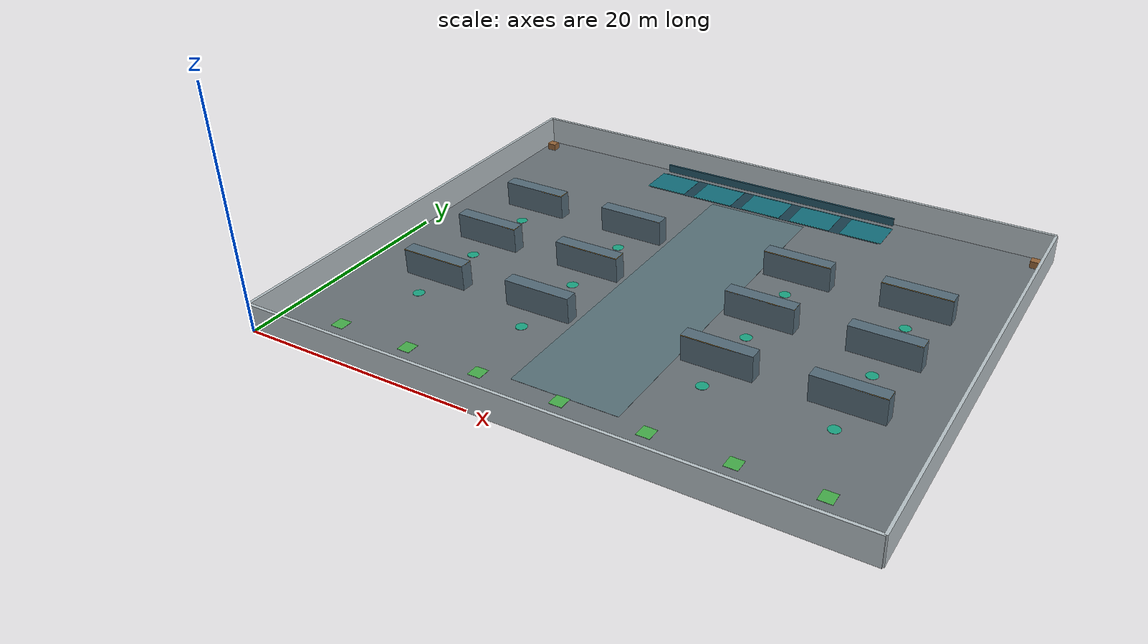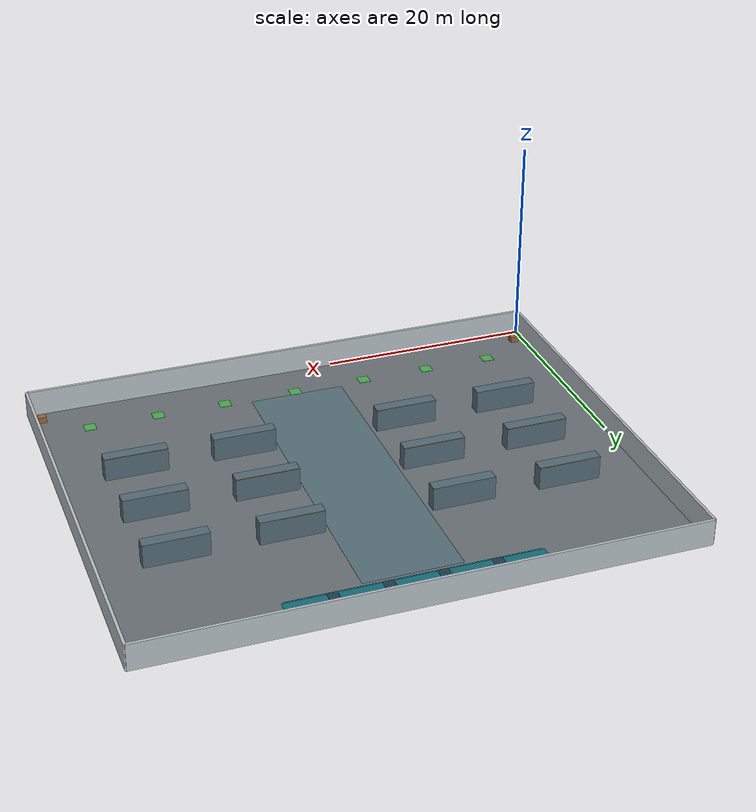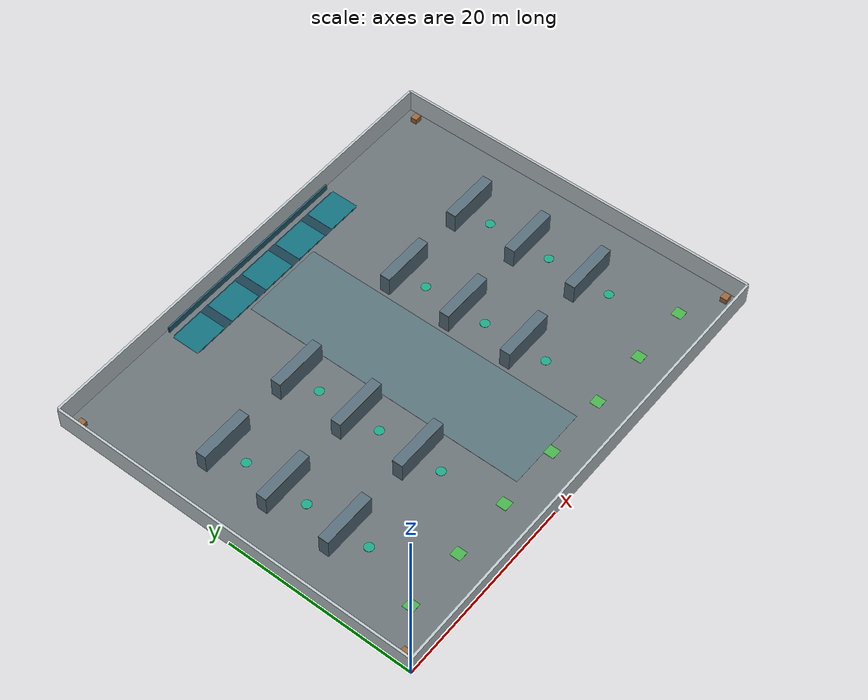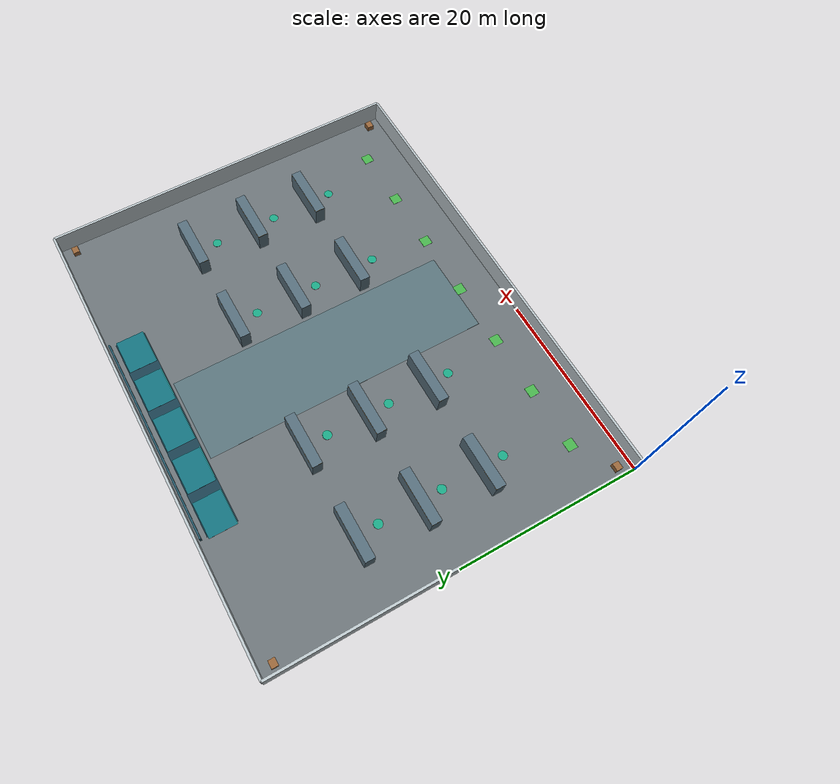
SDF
<?xml version="1.0" ?>
<!-- |    This document was autogenerated by xacro from src/amr_simulation/worlds/warehouse_sih_v2_large.sdf.xacro | -->
<!-- |    EDITING THIS FILE BY HAND IS NOT RECOMMENDED                                 | -->
<sdf version="1.9">
  <world name="warehouse_sih_v2_large">
    <physics name="stable" type="ode">
      <max_step_size>0.002</max_step_size>
      <real_time_factor>1.0</real_time_factor>
      <real_time_update_rate>500</real_time_update_rate>
    </physics>
    <plugin filename="gz-sim-physics-system" name="gz::sim::systems::Physics"/>
    <plugin filename="gz-sim-user-commands-system" name="gz::sim::systems::UserCommands"/>
    <plugin filename="gz-sim-scene-broadcaster-system" name="gz::sim::systems::SceneBroadcaster"/>
    <plugin filename="gz-sim-sensors-system" name="gz::sim::systems::Sensors">
      <render_engine>ogre2</render_engine>
    </plugin>
    <plugin filename="gz-sim-imu-system" name="gz::sim::systems::Imu"/>
    <scene>
      <ambient>0.56 0.59 0.62 1</ambient>
      <background>0.12 0.15 0.18 1</background>
      <shadows>true</shadows>
    </scene>
    <light name="sun" type="directional">
      <pose>25 20 18 0 0 0</pose>
      <diffuse>0.92 0.93 0.91 1</diffuse>
      <specular>0.20 0.20 0.20 1</specular>
      <direction>-0.35 0.25 -0.9</direction>
      <cast_shadows>true</cast_shadows>
    </light>
    <model name="warehouse_floor">
      <static>true</static>
      <pose>25 20 -0.05 0 0 0</pose>
      <link name="floor">
        <collision name="collision">
          <geometry>
            <box>
              <size>50 40 0.10</size>
            </box>
          </geometry>
        </collision>
        <visual name="visual">
          <geometry>
            <box>
              <size>50 40 0.10</size>
            </box>
          </geometry>
          <material>
            <ambient>0.33 0.36 0.38 1</ambient>
            <diffuse>0.41 0.44 0.46 1</diffuse>
          </material>
        </visual>
      </link>
    </model>
    <model name="wall_north">
      <static>true</static>
      <pose>25 40 1.25 0 0 0</pose>
      <link name="wall">
        <collision name="collision">
          <geometry>
            <box>
              <size>50 0.25 2.5</size>
            </box>
          </geometry>
        </collision>
        <visual name="visual">
          <geometry>
            <box>
              <size>50 0.25 2.5</size>
            </box>
          </geometry>
          <material>
            <ambient>0.64 0.69 0.72 1</ambient>
            <diffuse>0.72 0.76 0.78 1</diffuse>
          </material>
        </visual>
      </link>
    </model>
    <model name="wall_south">
      <static>true</static>
      <pose>25 0 1.25 0 0 0</pose>
      <link name="wall">
        <collision name="collision">
          <geometry>
            <box>
              <size>50 0.25 2.5</size>
            </box>
          </geometry>
        </collision>
        <visual name="visual">
          <geometry>
            <box>
              <size>50 0.25 2.5</size>
            </box>
          </geometry>
          <material>
            <ambient>0.64 0.69 0.72 1</ambient>
            <diffuse>0.72 0.76 0.78 1</diffuse>
          </material>
        </visual>
      </link>
    </model>
    <model name="wall_west">
      <static>true</static>
      <pose>0 20 1.25 0 0 0</pose>
      <link name="wall">
        <collision name="collision">
          <geometry>
            <box>
              <size>0.25 40 2.5</size>
            </box>
          </geometry>
        </collision>
        <visual name="visual">
          <geometry>
            <box>
              <size>0.25 40 2.5</size>
            </box>
          </geometry>
          <material>
            <ambient>0.64 0.69 0.72 1</ambient>
            <diffuse>0.72 0.76 0.78 1</diffuse>
          </material>
        </visual>
      </link>
    </model>
    <model name="wall_east">
      <static>true</static>
      <pose>50 20 1.25 0 0 0</pose>
      <link name="wall">
        <collision name="collision">
          <geometry>
            <box>
              <size>0.25 40 2.5</size>
            </box>
          </geometry>
        </collision>
        <visual name="visual">
          <geometry>
            <box>
              <size>0.25 40 2.5</size>
            </box>
          </geometry>
          <material>
            <ambient>0.64 0.69 0.72 1</ambient>
            <diffuse>0.72 0.76 0.78 1</diffuse>
          </material>
        </visual>
      </link>
    </model>
    <!-- Floor paint has no collision. It leaves the central route dominant. -->
    <model name="MAIN_PATH">
      <static>true</static>
      <pose>25 20 0.006 0 0 0</pose>
      <link name="paint">
        <visual name="visual">
          <geometry>
            <box>
              <size>9.0 31.0 0.012</size>
            </box>
          </geometry>
          <material>
            <ambient>0.30 0.38 0.41 1</ambient>
            <diffuse>0.34 0.44 0.47 1</diffuse>
          </material>
        </visual>
      </link>
    </model>
    <model name="SHELF_01">
      <static>true</static>
      <pose>7.225 27.0 1.10 0 0 0</pose>
      <link name="rack">
        <collision name="collision">
          <geometry>
            <box>
              <size>5.8 1.1 2.2</size>
            </box>
          </geometry>
        </collision>
        <visual name="frame">
          <geometry>
            <box>
              <size>5.8 1.1 2.2</size>
            </box>
          </geometry>
          <material>
            <ambient>0.24 0.31 0.35 1</ambient>
            <diffuse>0.33 0.42 0.47 1</diffuse>
          </material>
        </visual>
        <visual name="top_rail">
          <pose>0 0 1.07 0 0 0</pose>
          <geometry>
            <box>
              <size>5.8 1.1 0.06</size>
            </box>
          </geometry>
          <material>
            <ambient>0.72 0.48 0.12 1</ambient>
            <diffuse>0.78 0.54 0.14 1</diffuse>
          </material>
        </visual>
      </link>
    </model>
    <model name="SHELF_02">
      <static>true</static>
      <pose>17.225 27.0 1.10 0 0 0</pose>
      <link name="rack">
        <collision name="collision">
          <geometry>
            <box>
              <size>5.8 1.1 2.2</size>
            </box>
          </geometry>
        </collision>
        <visual name="frame">
          <geometry>
            <box>
              <size>5.8 1.1 2.2</size>
            </box>
          </geometry>
          <material>
            <ambient>0.24 0.31 0.35 1</ambient>
            <diffuse>0.33 0.42 0.47 1</diffuse>
          </material>
        </visual>
        <visual name="top_rail">
          <pose>0 0 1.07 0 0 0</pose>
          <geometry>
            <box>
              <size>5.8 1.1 0.06</size>
            </box>
          </geometry>
          <material>
            <ambient>0.72 0.48 0.12 1</ambient>
            <diffuse>0.78 0.54 0.14 1</diffuse>
          </material>
        </visual>
      </link>
    </model>
    <model name="SHELF_03">
      <static>true</static>
      <pose>32.775 27.0 1.10 0 0 0</pose>
      <link name="rack">
        <collision name="collision">
          <geometry>
            <box>
              <size>5.8 1.1 2.2</size>
            </box>
          </geometry>
        </collision>
        <visual name="frame">
          <geometry>
            <box>
              <size>5.8 1.1 2.2</size>
            </box>
          </geometry>
          <material>
            <ambient>0.24 0.31 0.35 1</ambient>
            <diffuse>0.33 0.42 0.47 1</diffuse>
          </material>
        </visual>
        <visual name="top_rail">
          <pose>0 0 1.07 0 0 0</pose>
          <geometry>
            <box>
              <size>5.8 1.1 0.06</size>
            </box>
          </geometry>
          <material>
            <ambient>0.72 0.48 0.12 1</ambient>
            <diffuse>0.78 0.54 0.14 1</diffuse>
          </material>
        </visual>
      </link>
    </model>
    <model name="SHELF_04">
      <static>true</static>
      <pose>42.775 27.0 1.10 0 0 0</pose>
      <link name="rack">
        <collision name="collision">
          <geometry>
            <box>
              <size>5.8 1.1 2.2</size>
            </box>
          </geometry>
        </collision>
        <visual name="frame">
          <geometry>
            <box>
              <size>5.8 1.1 2.2</size>
            </box>
          </geometry>
          <material>
            <ambient>0.24 0.31 0.35 1</ambient>
            <diffuse>0.33 0.42 0.47 1</diffuse>
          </material>
        </visual>
        <visual name="top_rail">
          <pose>0 0 1.07 0 0 0</pose>
          <geometry>
            <box>
              <size>5.8 1.1 0.06</size>
            </box>
          </geometry>
          <material>
            <ambient>0.72 0.48 0.12 1</ambient>
            <diffuse>0.78 0.54 0.14 1</diffuse>
          </material>
        </visual>
      </link>
    </model>
    <model name="SHELF_05">
      <static>true</static>
      <pose>7.225 20.0 1.10 0 0 0</pose>
      <link name="rack">
        <collision name="collision">
          <geometry>
            <box>
              <size>5.8 1.1 2.2</size>
            </box>
          </geometry>
        </collision>
        <visual name="frame">
          <geometry>
            <box>
              <size>5.8 1.1 2.2</size>
            </box>
          </geometry>
          <material>
            <ambient>0.24 0.31 0.35 1</ambient>
            <diffuse>0.33 0.42 0.47 1</diffuse>
          </material>
        </visual>
        <visual name="top_rail">
          <pose>0 0 1.07 0 0 0</pose>
          <geometry>
            <box>
              <size>5.8 1.1 0.06</size>
            </box>
          </geometry>
          <material>
            <ambient>0.72 0.48 0.12 1</ambient>
            <diffuse>0.78 0.54 0.14 1</diffuse>
          </material>
        </visual>
      </link>
    </model>
    <model name="SHELF_06">
      <static>true</static>
      <pose>17.225 20.0 1.10 0 0 0</pose>
      <link name="rack">
        <collision name="collision">
          <geometry>
            <box>
              <size>5.8 1.1 2.2</size>
            </box>
          </geometry>
        </collision>
        <visual name="frame">
          <geometry>
            <box>
              <size>5.8 1.1 2.2</size>
            </box>
          </geometry>
          <material>
            <ambient>0.24 0.31 0.35 1</ambient>
            <diffuse>0.33 0.42 0.47 1</diffuse>
          </material>
        </visual>
        <visual name="top_rail">
          <pose>0 0 1.07 0 0 0</pose>
          <geometry>
            <box>
              <size>5.8 1.1 0.06</size>
            </box>
          </geometry>
          <material>
            <ambient>0.72 0.48 0.12 1</ambient>
            <diffuse>0.78 0.54 0.14 1</diffuse>
          </material>
        </visual>
      </link>
    </model>
    <model name="SHELF_07">
      <static>true</static>
      <pose>32.775 20.0 1.10 0 0 0</pose>
      <link name="rack">
        <collision name="collision">
          <geometry>
            <box>
              <size>5.8 1.1 2.2</size>
            </box>
          </geometry>
        </collision>
        <visual name="frame">
          <geometry>
            <box>
              <size>5.8 1.1 2.2</size>
            </box>
          </geometry>
          <material>
            <ambient>0.24 0.31 0.35 1</ambient>
            <diffuse>0.33 0.42 0.47 1</diffuse>
          </material>
        </visual>
        <visual name="top_rail">
          <pose>0 0 1.07 0 0 0</pose>
          <geometry>
            <box>
              <size>5.8 1.1 0.06</size>
            </box>
          </geometry>
          <material>
            <ambient>0.72 0.48 0.12 1</ambient>
            <diffuse>0.78 0.54 0.14 1</diffuse>
          </material>
        </visual>
      </link>
    </model>
    <model name="SHELF_08">
      <static>true</static>
      <pose>42.775 20.0 1.10 0 0 0</pose>
      <link name="rack">
        <collision name="collision">
          <geometry>
            <box>
              <size>5.8 1.1 2.2</size>
            </box>
          </geometry>
        </collision>
        <visual name="frame">
          <geometry>
            <box>
              <size>5.8 1.1 2.2</size>
            </box>
          </geometry>
          <material>
            <ambient>0.24 0.31 0.35 1</ambient>
            <diffuse>0.33 0.42 0.47 1</diffuse>
          </material>
        </visual>
        <visual name="top_rail">
          <pose>0 0 1.07 0 0 0</pose>
          <geometry>
            <box>
              <size>5.8 1.1 0.06</size>
            </box>
          </geometry>
          <material>
            <ambient>0.72 0.48 0.12 1</ambient>
            <diffuse>0.78 0.54 0.14 1</diffuse>
          </material>
        </visual>
      </link>
    </model>
    <model name="SHELF_09">
      <static>true</static>
      <pose>7.225 13.0 1.10 0 0 0</pose>
      <link name="rack">
        <collision name="collision">
          <geometry>
            <box>
              <size>5.8 1.1 2.2</size>
            </box>
          </geometry>
        </collision>
        <visual name="frame">
          <geometry>
            <box>
              <size>5.8 1.1 2.2</size>
            </box>
          </geometry>
          <material>
            <ambient>0.24 0.31 0.35 1</ambient>
            <diffuse>0.33 0.42 0.47 1</diffuse>
          </material>
        </visual>
        <visual name="top_rail">
          <pose>0 0 1.07 0 0 0</pose>
          <geometry>
            <box>
              <size>5.8 1.1 0.06</size>
            </box>
          </geometry>
          <material>
            <ambient>0.72 0.48 0.12 1</ambient>
            <diffuse>0.78 0.54 0.14 1</diffuse>
          </material>
        </visual>
      </link>
    </model>
    <model name="SHELF_10">
      <static>true</static>
      <pose>17.225 13.0 1.10 0 0 0</pose>
      <link name="rack">
        <collision name="collision">
          <geometry>
            <box>
              <size>5.8 1.1 2.2</size>
            </box>
          </geometry>
        </collision>
        <visual name="frame">
          <geometry>
            <box>
              <size>5.8 1.1 2.2</size>
            </box>
          </geometry>
          <material>
            <ambient>0.24 0.31 0.35 1</ambient>
            <diffuse>0.33 0.42 0.47 1</diffuse>
          </material>
        </visual>
        <visual name="top_rail">
          <pose>0 0 1.07 0 0 0</pose>
          <geometry>
            <box>
              <size>5.8 1.1 0.06</size>
            </box>
          </geometry>
          <material>
            <ambient>0.72 0.48 0.12 1</ambient>
            <diffuse>0.78 0.54 0.14 1</diffuse>
          </material>
        </visual>
      </link>
    </model>
    <model name="SHELF_11">
      <static>true</static>
      <pose>32.775 13.0 1.10 0 0 0</pose>
      <link name="rack">
        <collision name="collision">
          <geometry>
            <box>
              <size>5.8 1.1 2.2</size>
            </box>
          </geometry>
        </collision>
        <visual name="frame">
          <geometry>
            <box>
              <size>5.8 1.1 2.2</size>
            </box>
          </geometry>
          <material>
            <ambient>0.24 0.31 0.35 1</ambient>
            <diffuse>0.33 0.42 0.47 1</diffuse>
          </material>
        </visual>
        <visual name="top_rail">
          <pose>0 0 1.07 0 0 0</pose>
          <geometry>
            <box>
              <size>5.8 1.1 0.06</size>
            </box>
          </geometry>
          <material>
            <ambient>0.72 0.48 0.12 1</ambient>
            <diffuse>0.78 0.54 0.14 1</diffuse>
          </material>
        </visual>
      </link>
    </model>
    <model name="SHELF_12">
      <static>true</static>
      <pose>42.775 13.0 1.10 0 0 0</pose>
      <link name="rack">
        <collision name="collision">
          <geometry>
            <box>
              <size>5.8 1.1 2.2</size>
            </box>
          </geometry>
        </collision>
        <visual name="frame">
          <geometry>
            <box>
              <size>5.8 1.1 2.2</size>
            </box>
          </geometry>
          <material>
            <ambient>0.24 0.31 0.35 1</ambient>
            <diffuse>0.33 0.42 0.47 1</diffuse>
          </material>
        </visual>
        <visual name="top_rail">
          <pose>0 0 1.07 0 0 0</pose>
          <geometry>
            <box>
              <size>5.8 1.1 0.06</size>
            </box>
          </geometry>
          <material>
            <ambient>0.72 0.48 0.12 1</ambient>
            <diffuse>0.78 0.54 0.14 1</diffuse>
          </material>
        </visual>
      </link>
    </model>
    <model name="PICKUP_01">
      <static>true</static>
      <pose>7.225 24.4 0.012 0 0 0</pose>
      <link name="floor_marker">
        <visual name="visual">
          <geometry>
            <cylinder>
              <radius>0.48</radius>
              <length>0.024</length>
            </cylinder>
          </geometry>
          <material>
            <ambient>0.08 0.51 0.42 1</ambient>
            <diffuse>0.10 0.64 0.51 1</diffuse>
          </material>
        </visual>
      </link>
    </model>
    <model name="PICKUP_02">
      <static>true</static>
      <pose>17.225 24.4 0.012 0 0 0</pose>
      <link name="floor_marker">
        <visual name="visual">
          <geometry>
            <cylinder>
              <radius>0.48</radius>
              <length>0.024</length>
            </cylinder>
          </geometry>
          <material>
            <ambient>0.08 0.51 0.42 1</ambient>
            <diffuse>0.10 0.64 0.51 1</diffuse>
          </material>
        </visual>
      </link>
    </model>
    <model name="PICKUP_03">
      <static>true</static>
      <pose>32.775 24.4 0.012 0 0 0</pose>
      <link name="floor_marker">
        <visual name="visual">
          <geometry>
            <cylinder>
              <radius>0.48</radius>
              <length>0.024</length>
            </cylinder>
          </geometry>
          <material>
            <ambient>0.08 0.51 0.42 1</ambient>
            <diffuse>0.10 0.64 0.51 1</diffuse>
          </material>
        </visual>
      </link>
    </model>
    <model name="PICKUP_04">
      <static>true</static>
      <pose>42.775 24.4 0.012 0 0 0</pose>
      <link name="floor_marker">
        <visual name="visual">
          <geometry>
            <cylinder>
              <radius>0.48</radius>
              <length>0.024</length>
            </cylinder>
          </geometry>
          <material>
            <ambient>0.08 0.51 0.42 1</ambient>
            <diffuse>0.10 0.64 0.51 1</diffuse>
          </material>
        </visual>
      </link>
    </model>
    <model name="PICKUP_05">
      <static>true</static>
      <pose>7.225 17.4 0.012 0 0 0</pose>
      <link name="floor_marker">
        <visual name="visual">
          <geometry>
            <cylinder>
              <radius>0.48</radius>
              <length>0.024</length>
            </cylinder>
          </geometry>
          <material>
            <ambient>0.08 0.51 0.42 1</ambient>
            <diffuse>0.10 0.64 0.51 1</diffuse>
          </material>
        </visual>
      </link>
    </model>
    <model name="PICKUP_06">
      <static>true</static>
      <pose>17.225 17.4 0.012 0 0 0</pose>
      <link name="floor_marker">
        <visual name="visual">
          <geometry>
            <cylinder>
              <radius>0.48</radius>
              <length>0.024</length>
            </cylinder>
          </geometry>
          <material>
            <ambient>0.08 0.51 0.42 1</ambient>
            <diffuse>0.10 0.64 0.51 1</diffuse>
          </material>
        </visual>
      </link>
    </model>
    <model name="PICKUP_07">
      <static>true</static>
      <pose>32.775 17.4 0.012 0 0 0</pose>
      <link name="floor_marker">
        <visual name="visual">
          <geometry>
            <cylinder>
              <radius>0.48</radius>
              <length>0.024</length>
            </cylinder>
          </geometry>
          <material>
            <ambient>0.08 0.51 0.42 1</ambient>
            <diffuse>0.10 0.64 0.51 1</diffuse>
          </material>
        </visual>
      </link>
    </model>
    <model name="PICKUP_08">
      <static>true</static>
      <pose>42.775 17.4 0.012 0 0 0</pose>
      <link name="floor_marker">
        <visual name="visual">
          <geometry>
            <cylinder>
              <radius>0.48</radius>
              <length>0.024</length>
            </cylinder>
          </geometry>
          <material>
            <ambient>0.08 0.51 0.42 1</ambient>
            <diffuse>0.10 0.64 0.51 1</diffuse>
          </material>
        </visual>
      </link>
    </model>
    <model name="PICKUP_09">
      <static>true</static>
      <pose>7.225 10.4 0.012 0 0 0</pose>
      <link name="floor_marker">
        <visual name="visual">
          <geometry>
            <cylinder>
              <radius>0.48</radius>
              <length>0.024</length>
            </cylinder>
          </geometry>
          <material>
            <ambient>0.08 0.51 0.42 1</ambient>
            <diffuse>0.10 0.64 0.51 1</diffuse>
          </material>
        </visual>
      </link>
    </model>
    <model name="PICKUP_10">
      <static>true</static>
      <pose>17.225 10.4 0.012 0 0 0</pose>
      <link name="floor_marker">
        <visual name="visual">
          <geometry>
            <cylinder>
              <radius>0.48</radius>
              <length>0.024</length>
            </cylinder>
          </geometry>
          <material>
            <ambient>0.08 0.51 0.42 1</ambient>
            <diffuse>0.10 0.64 0.51 1</diffuse>
          </material>
        </visual>
      </link>
    </model>
    <model name="PICKUP_11">
      <static>true</static>
      <pose>32.775 10.4 0.012 0 0 0</pose>
      <link name="floor_marker">
        <visual name="visual">
          <geometry>
            <cylinder>
              <radius>0.48</radius>
              <length>0.024</length>
            </cylinder>
          </geometry>
          <material>
            <ambient>0.08 0.51 0.42 1</ambient>
            <diffuse>0.10 0.64 0.51 1</diffuse>
          </material>
        </visual>
      </link>
    </model>
    <model name="PICKUP_12">
      <static>true</static>
      <pose>42.775 10.4 0.012 0 0 0</pose>
      <link name="floor_marker">
        <visual name="visual">
          <geometry>
            <cylinder>
              <radius>0.48</radius>
              <length>0.024</length>
            </cylinder>
          </geometry>
          <material>
            <ambient>0.08 0.51 0.42 1</ambient>
            <diffuse>0.10 0.64 0.51 1</diffuse>
          </material>
        </visual>
      </link>
    </model>
    <model name="DROP_01">
      <static>true</static>
      <pose>5.0 4.0 0.012 0 0 0</pose>
      <link name="floor_marker">
        <visual name="visual">
          <geometry>
            <box>
              <size>1.10 1.10 0.024</size>
            </box>
          </geometry>
          <material>
            <ambient>0.19 0.56 0.22 1</ambient>
            <diffuse>0.27 0.68 0.29 1</diffuse>
          </material>
        </visual>
      </link>
    </model>
    <model name="DROP_02">
      <static>true</static>
      <pose>11.5 4.0 0.012 0 0 0</pose>
      <link name="floor_marker">
        <visual name="visual">
          <geometry>
            <box>
              <size>1.10 1.10 0.024</size>
            </box>
          </geometry>
          <material>
            <ambient>0.19 0.56 0.22 1</ambient>
            <diffuse>0.27 0.68 0.29 1</diffuse>
          </material>
        </visual>
      </link>
    </model>
    <model name="DROP_03">
      <static>true</static>
      <pose>18.0 4.0 0.012 0 0 0</pose>
      <link name="floor_marker">
        <visual name="visual">
          <geometry>
            <box>
              <size>1.10 1.10 0.024</size>
            </box>
          </geometry>
          <material>
            <ambient>0.19 0.56 0.22 1</ambient>
            <diffuse>0.27 0.68 0.29 1</diffuse>
          </material>
        </visual>
      </link>
    </model>
    <model name="DROP_04">
      <static>true</static>
      <pose>25.0 4.0 0.012 0 0 0</pose>
      <link name="floor_marker">
        <visual name="visual">
          <geometry>
            <box>
              <size>1.10 1.10 0.024</size>
            </box>
          </geometry>
          <material>
            <ambient>0.19 0.56 0.22 1</ambient>
            <diffuse>0.27 0.68 0.29 1</diffuse>
          </material>
        </visual>
      </link>
    </model>
    <model name="DROP_05">
      <static>true</static>
      <pose>32.0 4.0 0.012 0 0 0</pose>
      <link name="floor_marker">
        <visual name="visual">
          <geometry>
            <box>
              <size>1.10 1.10 0.024</size>
            </box>
          </geometry>
          <material>
            <ambient>0.19 0.56 0.22 1</ambient>
            <diffuse>0.27 0.68 0.29 1</diffuse>
          </material>
        </visual>
      </link>
    </model>
    <model name="DROP_06">
      <static>true</static>
      <pose>38.5 4.0 0.012 0 0 0</pose>
      <link name="floor_marker">
        <visual name="visual">
          <geometry>
            <box>
              <size>1.10 1.10 0.024</size>
            </box>
          </geometry>
          <material>
            <ambient>0.19 0.56 0.22 1</ambient>
            <diffuse>0.27 0.68 0.29 1</diffuse>
          </material>
        </visual>
      </link>
    </model>
    <model name="DROP_07">
      <static>true</static>
      <pose>45.0 4.0 0.012 0 0 0</pose>
      <link name="floor_marker">
        <visual name="visual">
          <geometry>
            <box>
              <size>1.10 1.10 0.024</size>
            </box>
          </geometry>
          <material>
            <ambient>0.19 0.56 0.22 1</ambient>
            <diffuse>0.27 0.68 0.29 1</diffuse>
          </material>
        </visual>
      </link>
    </model>
    <model name="CHARGING_STATION">
      <static>true</static>
      <pose>25 37.4 0.007 0 0 0</pose>
      <link name="paint">
        <visual name="visual">
          <geometry>
            <box>
              <size>22.6 3.2 0.014</size>
            </box>
          </geometry>
          <material>
            <ambient>0.08 0.18 0.24 1</ambient>
            <diffuse>0.10 0.24 0.30 1</diffuse>
          </material>
        </visual>
      </link>
    </model>
    <!-- A short rear rail makes this a visible station, while every bay remains open to the south. -->
    <model name="CHARGING_BACKSTOP">
      <static>true</static>
      <pose>25 39.6 0.35 0 0 0</pose>
      <link name="rail">
        <collision name="collision">
          <geometry>
            <box>
              <size>22.6 0.18 0.70</size>
            </box>
          </geometry>
        </collision>
        <visual name="visual">
          <geometry>
            <box>
              <size>22.6 0.18 0.70</size>
            </box>
          </geometry>
          <material>
            <ambient>0.11 0.27 0.33 1</ambient>
            <diffuse>0.14 0.34 0.41 1</diffuse>
          </material>
        </visual>
      </link>
    </model>
    <model name="CHARGE_01">
      <static>true</static>
      <pose>15.4 37.4 0.018 0 0 0</pose>
      <link name="floor_marker">
        <visual name="bay">
          <geometry>
            <box>
              <size>3.80 3.00 0.022</size>
            </box>
          </geometry>
          <material>
            <ambient>0.06 0.33 0.38 1</ambient>
            <diffuse>0.07 0.43 0.48 1</diffuse>
          </material>
        </visual>
        <visual name="entry_line">
          <pose>0 -1.48 0.012 0 0 0</pose>
          <geometry>
            <box>
              <size>3.76 0.04 0.012</size>
            </box>
          </geometry>
          <material>
            <ambient>0.21 0.88 0.85 1</ambient>
            <diffuse>0.24 0.92 0.88 1</diffuse>
          </material>
        </visual>
      </link>
    </model>
    <model name="CHARGE_02">
      <static>true</static>
      <pose>20.2 37.4 0.018 0 0 0</pose>
      <link name="floor_marker">
        <visual name="bay">
          <geometry>
            <box>
              <size>3.80 3.00 0.022</size>
            </box>
          </geometry>
          <material>
            <ambient>0.06 0.33 0.38 1</ambient>
            <diffuse>0.07 0.43 0.48 1</diffuse>
          </material>
        </visual>
        <visual name="entry_line">
          <pose>0 -1.48 0.012 0 0 0</pose>
          <geometry>
            <box>
              <size>3.76 0.04 0.012</size>
            </box>
          </geometry>
          <material>
            <ambient>0.21 0.88 0.85 1</ambient>
            <diffuse>0.24 0.92 0.88 1</diffuse>
          </material>
        </visual>
      </link>
    </model>
    <model name="CHARGE_03">
      <static>true</static>
      <pose>25 37.4 0.018 0 0 0</pose>
      <link name="floor_marker">
        <visual name="bay">
          <geometry>
            <box>
              <size>3.80 3.00 0.022</size>
            </box>
          </geometry>
          <material>
            <ambient>0.06 0.33 0.38 1</ambient>
            <diffuse>0.07 0.43 0.48 1</diffuse>
          </material>
        </visual>
        <visual name="entry_line">
          <pose>0 -1.48 0.012 0 0 0</pose>
          <geometry>
            <box>
              <size>3.76 0.04 0.012</size>
            </box>
          </geometry>
          <material>
            <ambient>0.21 0.88 0.85 1</ambient>
            <diffuse>0.24 0.92 0.88 1</diffuse>
          </material>
        </visual>
      </link>
    </model>
    <model name="CHARGE_04">
      <static>true</static>
      <pose>29.8 37.4 0.018 0 0 0</pose>
      <link name="floor_marker">
        <visual name="bay">
          <geometry>
            <box>
              <size>3.80 3.00 0.022</size>
            </box>
          </geometry>
          <material>
            <ambient>0.06 0.33 0.38 1</ambient>
            <diffuse>0.07 0.43 0.48 1</diffuse>
          </material>
        </visual>
        <visual name="entry_line">
          <pose>0 -1.48 0.012 0 0 0</pose>
          <geometry>
            <box>
              <size>3.76 0.04 0.012</size>
            </box>
          </geometry>
          <material>
            <ambient>0.21 0.88 0.85 1</ambient>
            <diffuse>0.24 0.92 0.88 1</diffuse>
          </material>
        </visual>
      </link>
    </model>
    <model name="CHARGE_05">
      <static>true</static>
      <pose>34.6 37.4 0.018 0 0 0</pose>
      <link name="floor_marker">
        <visual name="bay">
          <geometry>
            <box>
              <size>3.80 3.00 0.022</size>
            </box>
          </geometry>
          <material>
            <ambient>0.06 0.33 0.38 1</ambient>
            <diffuse>0.07 0.43 0.48 1</diffuse>
          </material>
        </visual>
        <visual name="entry_line">
          <pose>0 -1.48 0.012 0 0 0</pose>
          <geometry>
            <box>
              <size>3.76 0.04 0.012</size>
            </box>
          </geometry>
          <material>
            <ambient>0.21 0.88 0.85 1</ambient>
            <diffuse>0.24 0.92 0.88 1</diffuse>
          </material>
        </visual>
      </link>
    </model>
    <model name="PALLET_01">
      <static>true</static>
      <pose>1.0 1.5 0.30 0 0 0</pose>
      <link name="stack">
        <collision name="collision">
          <geometry>
            <box>
              <size>0.80 0.70 0.60</size>
            </box>
          </geometry>
        </collision>
        <visual name="visual">
          <geometry>
            <box>
              <size>0.80 0.70 0.60</size>
            </box>
          </geometry>
          <material>
            <ambient>0.47 0.31 0.17 1</ambient>
            <diffuse>0.58 0.39 0.22 1</diffuse>
          </material>
        </visual>
      </link>
    </model>
    <model name="PALLET_02">
      <static>true</static>
      <pose>49.0 1.5 0.30 0 0 0</pose>
      <link name="stack">
        <collision name="collision">
          <geometry>
            <box>
              <size>0.80 0.70 0.60</size>
            </box>
          </geometry>
        </collision>
        <visual name="visual">
          <geometry>
            <box>
              <size>0.80 0.70 0.60</size>
            </box>
          </geometry>
          <material>
            <ambient>0.47 0.31 0.17 1</ambient>
            <diffuse>0.58 0.39 0.22 1</diffuse>
          </material>
        </visual>
      </link>
    </model>
    <model name="PALLET_03">
      <static>true</static>
      <pose>1.0 38.5 0.30 0 0 0</pose>
      <link name="stack">
        <collision name="collision">
          <geometry>
            <box>
              <size>0.80 0.70 0.60</size>
            </box>
          </geometry>
        </collision>
        <visual name="visual">
          <geometry>
            <box>
              <size>0.80 0.70 0.60</size>
            </box>
          </geometry>
          <material>
            <ambient>0.47 0.31 0.17 1</ambient>
            <diffuse>0.58 0.39 0.22 1</diffuse>
          </material>
        </visual>
      </link>
    </model>
    <model name="PALLET_04">
      <static>true</static>
      <pose>49.0 38.5 0.30 0 0 0</pose>
      <link name="stack">
        <collision name="collision">
          <geometry>
            <box>
              <size>0.80 0.70 0.60</size>
            </box>
          </geometry>
        </collision>
        <visual name="visual">
          <geometry>
            <box>
              <size>0.80 0.70 0.60</size>
            </box>
          </geometry>
          <material>
            <ambient>0.47 0.31 0.17 1</ambient>
            <diffuse>0.58 0.39 0.22 1</diffuse>
          </material>
        </visual>
      </link>
    </model>
  </world>
</sdf>
